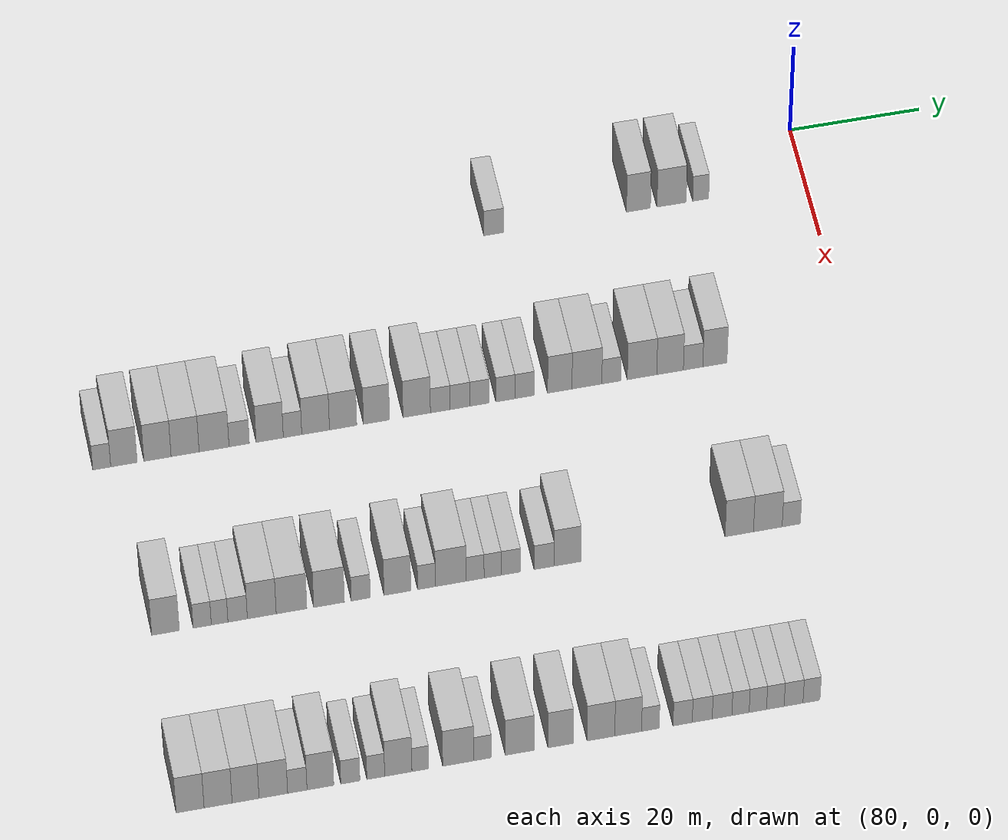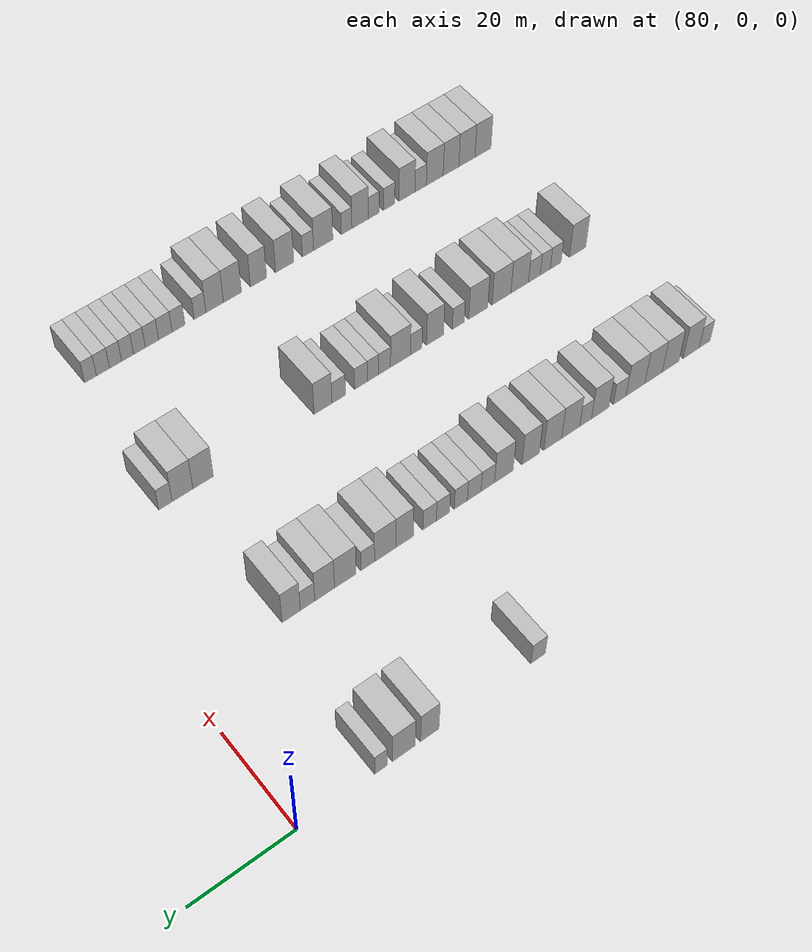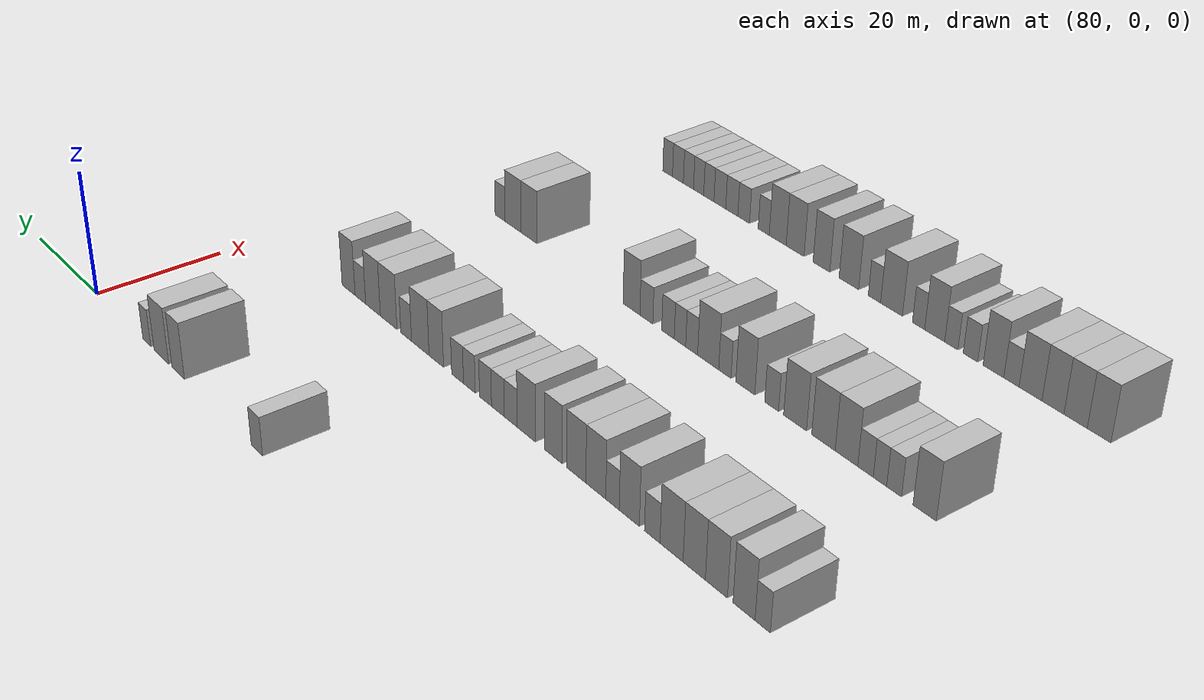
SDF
<sdf version="1.6">
 <world name="default">
  <model name="building_557">
   <static>1</static>
   <pose>85.0000 -47.4064 0 0.000000 0.000000 0.000000</pose>
   <link name="link">
    <pose>0 0 3.00 0 0 0</pose>
    <collision name="collision"><geometry><box><size>10.0000 2.9872 6.0000</size></box></geometry></collision>
    <visual name="visual">
     <cast_shadows>0</cast_shadows>
     <geometry><box><size>10.0000 2.9872 6.0000</size></box></geometry>
     <material>
      <script>
       <uri>model://HANNAS_wall/materials/scripts</uri>
       <uri>model://HANNAS_wall/materials/textures</uri>
       <name>vrc/HANNAS_wall</name>
      </script>
     </material>
    </visual>
   </link>
  </model>
  <model name="building_558">
   <static>1</static>
   <pose>85.0000 -25.4337 0 0.000000 0.000000 0.000000</pose>
   <link name="link">
    <pose>0 0 4.50 0 0 0</pose>
    <collision name="collision"><geometry><box><size>10.0000 3.6527 9.0000</size></box></geometry></collision>
    <visual name="visual">
     <cast_shadows>0</cast_shadows>
     <geometry><box><size>10.0000 3.6527 9.0000</size></box></geometry>
     <material>
      <script>
       <uri>model://HANNAS_wall/materials/scripts</uri>
       <uri>model://HANNAS_wall/materials/textures</uri>
       <name>vrc/HANNAS_wall</name>
      </script>
     </material>
    </visual>
   </link>
  </model>
  <model name="building_559">
   <static>1</static>
   <pose>85.0000 -20.3836 0 0.000000 0.000000 0.000000</pose>
   <link name="link">
    <pose>0 0 4.50 0 0 0</pose>
    <collision name="collision"><geometry><box><size>10.0000 4.4476 9.0000</size></box></geometry></collision>
    <visual name="visual">
     <cast_shadows>0</cast_shadows>
     <geometry><box><size>10.0000 4.4476 9.0000</size></box></geometry>
     <material>
      <script>
       <uri>model://HANNAS_wall/materials/scripts</uri>
       <uri>model://HANNAS_wall/materials/textures</uri>
       <name>vrc/HANNAS_wall</name>
      </script>
     </material>
    </visual>
   </link>
  </model>
  <model name="building_560">
   <static>1</static>
   <pose>85.0000 -15.9455 0 0.000000 0.000000 0.000000</pose>
   <link name="link">
    <pose>0 0 3.00 0 0 0</pose>
    <collision name="collision"><geometry><box><size>10.0000 2.4285 6.0000</size></box></geometry></collision>
    <visual name="visual">
     <cast_shadows>0</cast_shadows>
     <geometry><box><size>10.0000 2.4285 6.0000</size></box></geometry>
     <material>
      <script>
       <uri>model://HANNAS_wall/materials/scripts</uri>
       <uri>model://HANNAS_wall/materials/textures</uri>
       <name>vrc/HANNAS_wall</name>
      </script>
     </material>
    </visual>
   </link>
  </model>
  <model name="building_766">
   <static>1</static>
   <pose>115.0000 -111.4773 0 0.000000 0.000000 0.000000</pose>
   <link name="link">
    <pose>0 0 3.00 0 0 0</pose>
    <collision name="collision"><geometry><box><size>10.0000 2.6357 6.0000</size></box></geometry></collision>
    <visual name="visual">
     <cast_shadows>0</cast_shadows>
     <geometry><box><size>10.0000 2.6357 6.0000</size></box></geometry>
     <material>
      <script>
       <uri>model://HANNAS_wall/materials/scripts</uri>
       <uri>model://HANNAS_wall/materials/textures</uri>
       <name>vrc/HANNAS_wall</name>
      </script>
     </material>
    </visual>
   </link>
  </model>
  <model name="building_767">
   <static>1</static>
   <pose>115.0000 -108.2214 0 0.000000 0.000000 0.000000</pose>
   <link name="link">
    <pose>0 0 4.50 0 0 0</pose>
    <collision name="collision"><geometry><box><size>10.0000 3.8760 9.0000</size></box></geometry></collision>
    <visual name="visual">
     <cast_shadows>0</cast_shadows>
     <geometry><box><size>10.0000 3.8760 9.0000</size></box></geometry>
     <material>
      <script>
       <uri>model://HANNAS_wall/materials/scripts</uri>
       <uri>model://HANNAS_wall/materials/textures</uri>
       <name>vrc/HANNAS_wall</name>
      </script>
     </material>
    </visual>
   </link>
  </model>
  <model name="building_768">
   <static>1</static>
   <pose>115.0000 -103.2866 0 0.000000 0.000000 0.000000</pose>
   <link name="link">
    <pose>0 0 4.50 0 0 0</pose>
    <collision name="collision"><geometry><box><size>10.0000 3.9936 9.0000</size></box></geometry></collision>
    <visual name="visual">
     <cast_shadows>0</cast_shadows>
     <geometry><box><size>10.0000 3.9936 9.0000</size></box></geometry>
     <material>
      <script>
       <uri>model://HANNAS_wall/materials/scripts</uri>
       <uri>model://HANNAS_wall/materials/textures</uri>
       <name>vrc/HANNAS_wall</name>
      </script>
     </material>
    </visual>
   </link>
  </model>
  <model name="building_769">
   <static>1</static>
   <pose>115.0000 -99.2289 0 0.000000 0.000000 0.000000</pose>
   <link name="link">
    <pose>0 0 4.50 0 0 0</pose>
    <collision name="collision"><geometry><box><size>10.0000 4.1220 9.0000</size></box></geometry></collision>
    <visual name="visual">
     <cast_shadows>0</cast_shadows>
     <geometry><box><size>10.0000 4.1220 9.0000</size></box></geometry>
     <material>
      <script>
       <uri>model://HANNAS_wall/materials/scripts</uri>
       <uri>model://HANNAS_wall/materials/textures</uri>
       <name>vrc/HANNAS_wall</name>
      </script>
     </material>
    </visual>
   </link>
  </model>
  <model name="building_770">
   <static>1</static>
   <pose>115.0000 -94.9669 0 0.000000 0.000000 0.000000</pose>
   <link name="link">
    <pose>0 0 4.50 0 0 0</pose>
    <collision name="collision"><geometry><box><size>10.0000 4.4020 9.0000</size></box></geometry></collision>
    <visual name="visual">
     <cast_shadows>0</cast_shadows>
     <geometry><box><size>10.0000 4.4020 9.0000</size></box></geometry>
     <material>
      <script>
       <uri>model://HANNAS_wall/materials/scripts</uri>
       <uri>model://HANNAS_wall/materials/textures</uri>
       <name>vrc/HANNAS_wall</name>
      </script>
     </material>
    </visual>
   </link>
  </model>
  <model name="building_771">
   <static>1</static>
   <pose>115.0000 -91.2670 0 0.000000 0.000000 0.000000</pose>
   <link name="link">
    <pose>0 0 3.00 0 0 0</pose>
    <collision name="collision"><geometry><box><size>10.0000 2.9978 6.0000</size></box></geometry></collision>
    <visual name="visual">
     <cast_shadows>0</cast_shadows>
     <geometry><box><size>10.0000 2.9978 6.0000</size></box></geometry>
     <material>
      <script>
       <uri>model://HANNAS_wall/materials/scripts</uri>
       <uri>model://HANNAS_wall/materials/textures</uri>
       <name>vrc/HANNAS_wall</name>
      </script>
     </material>
    </visual>
   </link>
  </model>
  <model name="building_772">
   <static>1</static>
   <pose>115.0000 -86.7597 0 0.000000 0.000000 0.000000</pose>
   <link name="link">
    <pose>0 0 4.50 0 0 0</pose>
    <collision name="collision"><geometry><box><size>10.0000 4.0169 9.0000</size></box></geometry></collision>
    <visual name="visual">
     <cast_shadows>0</cast_shadows>
     <geometry><box><size>10.0000 4.0169 9.0000</size></box></geometry>
     <material>
      <script>
       <uri>model://HANNAS_wall/materials/scripts</uri>
       <uri>model://HANNAS_wall/materials/textures</uri>
       <name>vrc/HANNAS_wall</name>
      </script>
     </material>
    </visual>
   </link>
  </model>
  <model name="building_773">
   <static>1</static>
   <pose>115.0000 -83.3892 0 0.000000 0.000000 0.000000</pose>
   <link name="link">
    <pose>0 0 3.00 0 0 0</pose>
    <collision name="collision"><geometry><box><size>10.0000 2.7242 6.0000</size></box></geometry></collision>
    <visual name="visual">
     <cast_shadows>0</cast_shadows>
     <geometry><box><size>10.0000 2.7242 6.0000</size></box></geometry>
     <material>
      <script>
       <uri>model://HANNAS_wall/materials/scripts</uri>
       <uri>model://HANNAS_wall/materials/textures</uri>
       <name>vrc/HANNAS_wall</name>
      </script>
     </material>
    </visual>
   </link>
  </model>
  <model name="building_774">
   <static>1</static>
   <pose>115.0000 -79.9751 0 0.000000 0.000000 0.000000</pose>
   <link name="link">
    <pose>0 0 4.50 0 0 0</pose>
    <collision name="collision"><geometry><box><size>10.0000 4.1040 9.0000</size></box></geometry></collision>
    <visual name="visual">
     <cast_shadows>0</cast_shadows>
     <geometry><box><size>10.0000 4.1040 9.0000</size></box></geometry>
     <material>
      <script>
       <uri>model://HANNAS_wall/materials/scripts</uri>
       <uri>model://HANNAS_wall/materials/textures</uri>
       <name>vrc/HANNAS_wall</name>
      </script>
     </material>
    </visual>
   </link>
  </model>
  <model name="building_775">
   <static>1</static>
   <pose>115.0000 -75.9081 0 0.000000 0.000000 0.000000</pose>
   <link name="link">
    <pose>0 0 4.50 0 0 0</pose>
    <collision name="collision"><geometry><box><size>10.0000 4.0300 9.0000</size></box></geometry></collision>
    <visual name="visual">
     <cast_shadows>0</cast_shadows>
     <geometry><box><size>10.0000 4.0300 9.0000</size></box></geometry>
     <material>
      <script>
       <uri>model://HANNAS_wall/materials/scripts</uri>
       <uri>model://HANNAS_wall/materials/textures</uri>
       <name>vrc/HANNAS_wall</name>
      </script>
     </material>
    </visual>
   </link>
  </model>
  <model name="building_776">
   <static>1</static>
   <pose>115.0000 -70.9661 0 0.000000 0.000000 0.000000</pose>
   <link name="link">
    <pose>0 0 4.50 0 0 0</pose>
    <collision name="collision"><geometry><box><size>10.0000 3.8540 9.0000</size></box></geometry></collision>
    <visual name="visual">
     <cast_shadows>0</cast_shadows>
     <geometry><box><size>10.0000 3.8540 9.0000</size></box></geometry>
     <material>
      <script>
       <uri>model://HANNAS_wall/materials/scripts</uri>
       <uri>model://HANNAS_wall/materials/textures</uri>
       <name>vrc/HANNAS_wall</name>
      </script>
     </material>
    </visual>
   </link>
  </model>
  <model name="building_777">
   <static>1</static>
   <pose>115.0000 -65.0025 0 0.000000 0.000000 0.000000</pose>
   <link name="link">
    <pose>0 0 4.50 0 0 0</pose>
    <collision name="collision"><geometry><box><size>10.0000 4.0732 9.0000</size></box></geometry></collision>
    <visual name="visual">
     <cast_shadows>0</cast_shadows>
     <geometry><box><size>10.0000 4.0732 9.0000</size></box></geometry>
     <material>
      <script>
       <uri>model://HANNAS_wall/materials/scripts</uri>
       <uri>model://HANNAS_wall/materials/textures</uri>
       <name>vrc/HANNAS_wall</name>
      </script>
     </material>
    </visual>
   </link>
  </model>
  <model name="building_778">
   <static>1</static>
   <pose>115.0000 -61.4959 0 0.000000 0.000000 0.000000</pose>
   <link name="link">
    <pose>0 0 3.00 0 0 0</pose>
    <collision name="collision"><geometry><box><size>10.0000 2.9400 6.0000</size></box></geometry></collision>
    <visual name="visual">
     <cast_shadows>0</cast_shadows>
     <geometry><box><size>10.0000 2.9400 6.0000</size></box></geometry>
     <material>
      <script>
       <uri>model://HANNAS_wall/materials/scripts</uri>
       <uri>model://HANNAS_wall/materials/textures</uri>
       <name>vrc/HANNAS_wall</name>
      </script>
     </material>
    </visual>
   </link>
  </model>
  <model name="building_779">
   <static>1</static>
   <pose>115.0000 -58.5460 0 0.000000 0.000000 0.000000</pose>
   <link name="link">
    <pose>0 0 3.00 0 0 0</pose>
    <collision name="collision"><geometry><box><size>10.0000 2.9598 6.0000</size></box></geometry></collision>
    <visual name="visual">
     <cast_shadows>0</cast_shadows>
     <geometry><box><size>10.0000 2.9598 6.0000</size></box></geometry>
     <material>
      <script>
       <uri>model://HANNAS_wall/materials/scripts</uri>
       <uri>model://HANNAS_wall/materials/textures</uri>
       <name>vrc/HANNAS_wall</name>
      </script>
     </material>
    </visual>
   </link>
  </model>
  <model name="building_780">
   <static>1</static>
   <pose>115.0000 -55.6535 0 0.000000 0.000000 0.000000</pose>
   <link name="link">
    <pose>0 0 3.00 0 0 0</pose>
    <collision name="collision"><geometry><box><size>10.0000 2.8251 6.0000</size></box></geometry></collision>
    <visual name="visual">
     <cast_shadows>0</cast_shadows>
     <geometry><box><size>10.0000 2.8251 6.0000</size></box></geometry>
     <material>
      <script>
       <uri>model://HANNAS_wall/materials/scripts</uri>
       <uri>model://HANNAS_wall/materials/textures</uri>
       <name>vrc/HANNAS_wall</name>
      </script>
     </material>
    </visual>
   </link>
  </model>
  <model name="building_781">
   <static>1</static>
   <pose>115.0000 -51.8244 0 0.000000 0.000000 0.000000</pose>
   <link name="link">
    <pose>0 0 3.00 0 0 0</pose>
    <collision name="collision"><geometry><box><size>10.0000 2.8332 6.0000</size></box></geometry></collision>
    <visual name="visual">
     <cast_shadows>0</cast_shadows>
     <geometry><box><size>10.0000 2.8332 6.0000</size></box></geometry>
     <material>
      <script>
       <uri>model://HANNAS_wall/materials/scripts</uri>
       <uri>model://HANNAS_wall/materials/textures</uri>
       <name>vrc/HANNAS_wall</name>
      </script>
     </material>
    </visual>
   </link>
  </model>
  <model name="building_782">
   <static>1</static>
   <pose>115.0000 -48.9691 0 0.000000 0.000000 0.000000</pose>
   <link name="link">
    <pose>0 0 3.00 0 0 0</pose>
    <collision name="collision"><geometry><box><size>10.0000 2.8774 6.0000</size></box></geometry></collision>
    <visual name="visual">
     <cast_shadows>0</cast_shadows>
     <geometry><box><size>10.0000 2.8774 6.0000</size></box></geometry>
     <material>
      <script>
       <uri>model://HANNAS_wall/materials/scripts</uri>
       <uri>model://HANNAS_wall/materials/textures</uri>
       <name>vrc/HANNAS_wall</name>
      </script>
     </material>
    </visual>
   </link>
  </model>
  <model name="building_783">
   <static>1</static>
   <pose>115.0000 -43.7094 0 0.000000 0.000000 0.000000</pose>
   <link name="link">
    <pose>0 0 4.50 0 0 0</pose>
    <collision name="collision"><geometry><box><size>10.0000 3.6418 9.0000</size></box></geometry></collision>
    <visual name="visual">
     <cast_shadows>0</cast_shadows>
     <geometry><box><size>10.0000 3.6418 9.0000</size></box></geometry>
     <material>
      <script>
       <uri>model://HANNAS_wall/materials/scripts</uri>
       <uri>model://HANNAS_wall/materials/textures</uri>
       <name>vrc/HANNAS_wall</name>
      </script>
     </material>
    </visual>
   </link>
  </model>
  <model name="building_784">
   <static>1</static>
   <pose>115.0000 -39.6632 0 0.000000 0.000000 0.000000</pose>
   <link name="link">
    <pose>0 0 4.50 0 0 0</pose>
    <collision name="collision"><geometry><box><size>10.0000 4.4506 9.0000</size></box></geometry></collision>
    <visual name="visual">
     <cast_shadows>0</cast_shadows>
     <geometry><box><size>10.0000 4.4506 9.0000</size></box></geometry>
     <material>
      <script>
       <uri>model://HANNAS_wall/materials/scripts</uri>
       <uri>model://HANNAS_wall/materials/textures</uri>
       <name>vrc/HANNAS_wall</name>
      </script>
     </material>
    </visual>
   </link>
  </model>
  <model name="building_785">
   <static>1</static>
   <pose>115.0000 -36.0374 0 0.000000 0.000000 0.000000</pose>
   <link name="link">
    <pose>0 0 3.00 0 0 0</pose>
    <collision name="collision"><geometry><box><size>10.0000 2.8010 6.0000</size></box></geometry></collision>
    <visual name="visual">
     <cast_shadows>0</cast_shadows>
     <geometry><box><size>10.0000 2.8010 6.0000</size></box></geometry>
     <material>
      <script>
       <uri>model://HANNAS_wall/materials/scripts</uri>
       <uri>model://HANNAS_wall/materials/textures</uri>
       <name>vrc/HANNAS_wall</name>
      </script>
     </material>
    </visual>
   </link>
  </model>
  <model name="building_786">
   <static>1</static>
   <pose>115.0000 -31.4346 0 0.000000 0.000000 0.000000</pose>
   <link name="link">
    <pose>0 0 4.50 0 0 0</pose>
    <collision name="collision"><geometry><box><size>10.0000 4.4046 9.0000</size></box></geometry></collision>
    <visual name="visual">
     <cast_shadows>0</cast_shadows>
     <geometry><box><size>10.0000 4.4046 9.0000</size></box></geometry>
     <material>
      <script>
       <uri>model://HANNAS_wall/materials/scripts</uri>
       <uri>model://HANNAS_wall/materials/textures</uri>
       <name>vrc/HANNAS_wall</name>
      </script>
     </material>
    </visual>
   </link>
  </model>
  <model name="building_787">
   <static>1</static>
   <pose>115.0000 -27.2376 0 0.000000 0.000000 0.000000</pose>
   <link name="link">
    <pose>0 0 4.50 0 0 0</pose>
    <collision name="collision"><geometry><box><size>10.0000 3.9894 9.0000</size></box></geometry></collision>
    <visual name="visual">
     <cast_shadows>0</cast_shadows>
     <geometry><box><size>10.0000 3.9894 9.0000</size></box></geometry>
     <material>
      <script>
       <uri>model://HANNAS_wall/materials/scripts</uri>
       <uri>model://HANNAS_wall/materials/textures</uri>
       <name>vrc/HANNAS_wall</name>
      </script>
     </material>
    </visual>
   </link>
  </model>
  <model name="building_788">
   <static>1</static>
   <pose>115.0000 -23.7920 0 0.000000 0.000000 0.000000</pose>
   <link name="link">
    <pose>0 0 3.00 0 0 0</pose>
    <collision name="collision"><geometry><box><size>10.0000 2.9019 6.0000</size></box></geometry></collision>
    <visual name="visual">
     <cast_shadows>0</cast_shadows>
     <geometry><box><size>10.0000 2.9019 6.0000</size></box></geometry>
     <material>
      <script>
       <uri>model://HANNAS_wall/materials/scripts</uri>
       <uri>model://HANNAS_wall/materials/textures</uri>
       <name>vrc/HANNAS_wall</name>
      </script>
     </material>
    </visual>
   </link>
  </model>
  <model name="building_789">
   <static>1</static>
   <pose>115.0000 -20.5292 0 0.000000 0.000000 0.000000</pose>
   <link name="link">
    <pose>0 0 4.50 0 0 0</pose>
    <collision name="collision"><geometry><box><size>10.0000 3.6236 9.0000</size></box></geometry></collision>
    <visual name="visual">
     <cast_shadows>0</cast_shadows>
     <geometry><box><size>10.0000 3.6236 9.0000</size></box></geometry>
     <material>
      <script>
       <uri>model://HANNAS_wall/materials/scripts</uri>
       <uri>model://HANNAS_wall/materials/textures</uri>
       <name>vrc/HANNAS_wall</name>
      </script>
     </material>
    </visual>
   </link>
  </model>
  <model name="building_997">
   <static>1</static>
   <pose>145.0000 -107.3881 0 0.000000 0.000000 0.000000</pose>
   <link name="link">
    <pose>0 0 4.50 0 0 0</pose>
    <collision name="collision"><geometry><box><size>10.0000 3.9894 9.0000</size></box></geometry></collision>
    <visual name="visual">
     <cast_shadows>0</cast_shadows>
     <geometry><box><size>10.0000 3.9894 9.0000</size></box></geometry>
     <material>
      <script>
       <uri>model://HANNAS_wall/materials/scripts</uri>
       <uri>model://HANNAS_wall/materials/textures</uri>
       <name>vrc/HANNAS_wall</name>
      </script>
     </material>
    </visual>
   </link>
  </model>
  <model name="building_998">
   <static>1</static>
   <pose>145.0000 -102.0772 0 0.000000 0.000000 0.000000</pose>
   <link name="link">
    <pose>0 0 3.00 0 0 0</pose>
    <collision name="collision"><geometry><box><size>10.0000 2.6323 6.0000</size></box></geometry></collision>
    <visual name="visual">
     <cast_shadows>0</cast_shadows>
     <geometry><box><size>10.0000 2.6323 6.0000</size></box></geometry>
     <material>
      <script>
       <uri>model://HANNAS_wall/materials/scripts</uri>
       <uri>model://HANNAS_wall/materials/textures</uri>
       <name>vrc/HANNAS_wall</name>
      </script>
     </material>
    </visual>
   </link>
  </model>
  <model name="building_999">
   <static>1</static>
   <pose>145.0000 -99.5596 0 0.000000 0.000000 0.000000</pose>
   <link name="link">
    <pose>0 0 3.00 0 0 0</pose>
    <collision name="collision"><geometry><box><size>10.0000 2.4031 6.0000</size></box></geometry></collision>
    <visual name="visual">
     <cast_shadows>0</cast_shadows>
     <geometry><box><size>10.0000 2.4031 6.0000</size></box></geometry>
     <material>
      <script>
       <uri>model://HANNAS_wall/materials/scripts</uri>
       <uri>model://HANNAS_wall/materials/textures</uri>
       <name>vrc/HANNAS_wall</name>
      </script>
     </material>
    </visual>
   </link>
  </model>
  <model name="building_1000">
   <static>1</static>
   <pose>145.0000 -96.9518 0 0.000000 0.000000 0.000000</pose>
   <link name="link">
    <pose>0 0 3.00 0 0 0</pose>
    <collision name="collision"><geometry><box><size>10.0000 2.8125 6.0000</size></box></geometry></collision>
    <visual name="visual">
     <cast_shadows>0</cast_shadows>
     <geometry><box><size>10.0000 2.8125 6.0000</size></box></geometry>
     <material>
      <script>
       <uri>model://HANNAS_wall/materials/scripts</uri>
       <uri>model://HANNAS_wall/materials/textures</uri>
       <name>vrc/HANNAS_wall</name>
      </script>
     </material>
    </visual>
   </link>
  </model>
  <model name="building_1001">
   <static>1</static>
   <pose>145.0000 -93.4558 0 0.000000 0.000000 0.000000</pose>
   <link name="link">
    <pose>0 0 4.50 0 0 0</pose>
    <collision name="collision"><geometry><box><size>10.0000 4.1795 9.0000</size></box></geometry></collision>
    <visual name="visual">
     <cast_shadows>0</cast_shadows>
     <geometry><box><size>10.0000 4.1795 9.0000</size></box></geometry>
     <material>
      <script>
       <uri>model://HANNAS_wall/materials/scripts</uri>
       <uri>model://HANNAS_wall/materials/textures</uri>
       <name>vrc/HANNAS_wall</name>
      </script>
     </material>
    </visual>
   </link>
  </model>
  <model name="building_1002">
   <static>1</static>
   <pose>145.0000 -89.1459 0 0.000000 0.000000 0.000000</pose>
   <link name="link">
    <pose>0 0 4.50 0 0 0</pose>
    <collision name="collision"><geometry><box><size>10.0000 4.4404 9.0000</size></box></geometry></collision>
    <visual name="visual">
     <cast_shadows>0</cast_shadows>
     <geometry><box><size>10.0000 4.4404 9.0000</size></box></geometry>
     <material>
      <script>
       <uri>model://HANNAS_wall/materials/scripts</uri>
       <uri>model://HANNAS_wall/materials/textures</uri>
       <name>vrc/HANNAS_wall</name>
      </script>
     </material>
    </visual>
   </link>
  </model>
  <model name="building_1003">
   <static>1</static>
   <pose>145.0000 -83.6964 0 0.000000 0.000000 0.000000</pose>
   <link name="link">
    <pose>0 0 4.50 0 0 0</pose>
    <collision name="collision"><geometry><box><size>10.0000 4.4586 9.0000</size></box></geometry></collision>
    <visual name="visual">
     <cast_shadows>0</cast_shadows>
     <geometry><box><size>10.0000 4.4586 9.0000</size></box></geometry>
     <material>
      <script>
       <uri>model://HANNAS_wall/materials/scripts</uri>
       <uri>model://HANNAS_wall/materials/textures</uri>
       <name>vrc/HANNAS_wall</name>
      </script>
     </material>
    </visual>
   </link>
  </model>
  <model name="building_1004">
   <static>1</static>
   <pose>145.0000 -79.0856 0 0.000000 0.000000 0.000000</pose>
   <link name="link">
    <pose>0 0 3.00 0 0 0</pose>
    <collision name="collision"><geometry><box><size>10.0000 2.7630 6.0000</size></box></geometry></collision>
    <visual name="visual">
     <cast_shadows>0</cast_shadows>
     <geometry><box><size>10.0000 2.7630 6.0000</size></box></geometry>
     <material>
      <script>
       <uri>model://HANNAS_wall/materials/scripts</uri>
       <uri>model://HANNAS_wall/materials/textures</uri>
       <name>vrc/HANNAS_wall</name>
      </script>
     </material>
    </visual>
   </link>
  </model>
  <model name="building_1005">
   <static>1</static>
   <pose>145.0000 -73.7544 0 0.000000 0.000000 0.000000</pose>
   <link name="link">
    <pose>0 0 4.50 0 0 0</pose>
    <collision name="collision"><geometry><box><size>10.0000 3.8992 9.0000</size></box></geometry></collision>
    <visual name="visual">
     <cast_shadows>0</cast_shadows>
     <geometry><box><size>10.0000 3.8992 9.0000</size></box></geometry>
     <material>
      <script>
       <uri>model://HANNAS_wall/materials/scripts</uri>
       <uri>model://HANNAS_wall/materials/textures</uri>
       <name>vrc/HANNAS_wall</name>
      </script>
     </material>
    </visual>
   </link>
  </model>
  <model name="building_1006">
   <static>1</static>
   <pose>145.0000 -69.5105 0 0.000000 0.000000 0.000000</pose>
   <link name="link">
    <pose>0 0 3.00 0 0 0</pose>
    <collision name="collision"><geometry><box><size>10.0000 2.5888 6.0000</size></box></geometry></collision>
    <visual name="visual">
     <cast_shadows>0</cast_shadows>
     <geometry><box><size>10.0000 2.5888 6.0000</size></box></geometry>
     <material>
      <script>
       <uri>model://HANNAS_wall/materials/scripts</uri>
       <uri>model://HANNAS_wall/materials/textures</uri>
       <name>vrc/HANNAS_wall</name>
      </script>
     </material>
    </visual>
   </link>
  </model>
  <model name="building_1007">
   <static>1</static>
   <pose>145.0000 -65.9717 0 0.000000 0.000000 0.000000</pose>
   <link name="link">
    <pose>0 0 4.50 0 0 0</pose>
    <collision name="collision"><geometry><box><size>10.0000 4.4888 9.0000</size></box></geometry></collision>
    <visual name="visual">
     <cast_shadows>0</cast_shadows>
     <geometry><box><size>10.0000 4.4888 9.0000</size></box></geometry>
     <material>
      <script>
       <uri>model://HANNAS_wall/materials/scripts</uri>
       <uri>model://HANNAS_wall/materials/textures</uri>
       <name>vrc/HANNAS_wall</name>
      </script>
     </material>
    </visual>
   </link>
  </model>
  <model name="building_1008">
   <static>1</static>
   <pose>145.0000 -62.4215 0 0.000000 0.000000 0.000000</pose>
   <link name="link">
    <pose>0 0 3.00 0 0 0</pose>
    <collision name="collision"><geometry><box><size>10.0000 2.6116 6.0000</size></box></geometry></collision>
    <visual name="visual">
     <cast_shadows>0</cast_shadows>
     <geometry><box><size>10.0000 2.6116 6.0000</size></box></geometry>
     <material>
      <script>
       <uri>model://HANNAS_wall/materials/scripts</uri>
       <uri>model://HANNAS_wall/materials/textures</uri>
       <name>vrc/HANNAS_wall</name>
      </script>
     </material>
    </visual>
   </link>
  </model>
  <model name="building_1009">
   <static>1</static>
   <pose>145.0000 -59.8563 0 0.000000 0.000000 0.000000</pose>
   <link name="link">
    <pose>0 0 3.00 0 0 0</pose>
    <collision name="collision"><geometry><box><size>10.0000 2.5187 6.0000</size></box></geometry></collision>
    <visual name="visual">
     <cast_shadows>0</cast_shadows>
     <geometry><box><size>10.0000 2.5187 6.0000</size></box></geometry>
     <material>
      <script>
       <uri>model://HANNAS_wall/materials/scripts</uri>
       <uri>model://HANNAS_wall/materials/textures</uri>
       <name>vrc/HANNAS_wall</name>
      </script>
     </material>
    </visual>
   </link>
  </model>
  <model name="building_1010">
   <static>1</static>
   <pose>145.0000 -57.2023 0 0.000000 0.000000 0.000000</pose>
   <link name="link">
    <pose>0 0 3.00 0 0 0</pose>
    <collision name="collision"><geometry><box><size>10.0000 2.7893 6.0000</size></box></geometry></collision>
    <visual name="visual">
     <cast_shadows>0</cast_shadows>
     <geometry><box><size>10.0000 2.7893 6.0000</size></box></geometry>
     <material>
      <script>
       <uri>model://HANNAS_wall/materials/scripts</uri>
       <uri>model://HANNAS_wall/materials/textures</uri>
       <name>vrc/HANNAS_wall</name>
      </script>
     </material>
    </visual>
   </link>
  </model>
  <model name="building_1011">
   <static>1</static>
   <pose>145.0000 -52.3284 0 0.000000 0.000000 0.000000</pose>
   <link name="link">
    <pose>0 0 3.00 0 0 0</pose>
    <collision name="collision"><geometry><box><size>10.0000 2.9586 6.0000</size></box></geometry></collision>
    <visual name="visual">
     <cast_shadows>0</cast_shadows>
     <geometry><box><size>10.0000 2.9586 6.0000</size></box></geometry>
     <material>
      <script>
       <uri>model://HANNAS_wall/materials/scripts</uri>
       <uri>model://HANNAS_wall/materials/textures</uri>
       <name>vrc/HANNAS_wall</name>
      </script>
     </material>
    </visual>
   </link>
  </model>
  <model name="building_1012">
   <static>1</static>
   <pose>145.0000 -48.9022 0 0.000000 0.000000 0.000000</pose>
   <link name="link">
    <pose>0 0 4.50 0 0 0</pose>
    <collision name="collision"><geometry><box><size>10.0000 3.8937 9.0000</size></box></geometry></collision>
    <visual name="visual">
     <cast_shadows>0</cast_shadows>
     <geometry><box><size>10.0000 3.8937 9.0000</size></box></geometry>
     <material>
      <script>
       <uri>model://HANNAS_wall/materials/scripts</uri>
       <uri>model://HANNAS_wall/materials/textures</uri>
       <name>vrc/HANNAS_wall</name>
      </script>
     </material>
    </visual>
   </link>
  </model>
  <model name="building_1013">
   <static>1</static>
   <pose>145.0000 -23.6770 0 0.000000 0.000000 0.000000</pose>
   <link name="link">
    <pose>0 0 4.50 0 0 0</pose>
    <collision name="collision"><geometry><box><size>10.0000 4.1856 9.0000</size></box></geometry></collision>
    <visual name="visual">
     <cast_shadows>0</cast_shadows>
     <geometry><box><size>10.0000 4.1856 9.0000</size></box></geometry>
     <material>
      <script>
       <uri>model://HANNAS_wall/materials/scripts</uri>
       <uri>model://HANNAS_wall/materials/textures</uri>
       <name>vrc/HANNAS_wall</name>
      </script>
     </material>
    </visual>
   </link>
  </model>
  <model name="building_1014">
   <static>1</static>
   <pose>145.0000 -19.4687 0 0.000000 0.000000 0.000000</pose>
   <link name="link">
    <pose>0 0 4.50 0 0 0</pose>
    <collision name="collision"><geometry><box><size>10.0000 4.2312 9.0000</size></box></geometry></collision>
    <visual name="visual">
     <cast_shadows>0</cast_shadows>
     <geometry><box><size>10.0000 4.2312 9.0000</size></box></geometry>
     <material>
      <script>
       <uri>model://HANNAS_wall/materials/scripts</uri>
       <uri>model://HANNAS_wall/materials/textures</uri>
       <name>vrc/HANNAS_wall</name>
      </script>
     </material>
    </visual>
   </link>
  </model>
  <model name="building_1015">
   <static>1</static>
   <pose>145.0000 -16.0120 0 0.000000 0.000000 0.000000</pose>
   <link name="link">
    <pose>0 0 3.00 0 0 0</pose>
    <collision name="collision"><geometry><box><size>10.0000 2.6821 6.0000</size></box></geometry></collision>
    <visual name="visual">
     <cast_shadows>0</cast_shadows>
     <geometry><box><size>10.0000 2.6821 6.0000</size></box></geometry>
     <material>
      <script>
       <uri>model://HANNAS_wall/materials/scripts</uri>
       <uri>model://HANNAS_wall/materials/textures</uri>
       <name>vrc/HANNAS_wall</name>
      </script>
     </material>
    </visual>
   </link>
  </model>
  <model name="building_1217">
   <static>1</static>
   <pose>175.0000 -109.1653 0 0.000000 0.000000 0.000000</pose>
   <link name="link">
    <pose>0 0 4.50 0 0 0</pose>
    <collision name="collision"><geometry><box><size>10.0000 3.9616 9.0000</size></box></geometry></collision>
    <visual name="visual">
     <cast_shadows>0</cast_shadows>
     <geometry><box><size>10.0000 3.9616 9.0000</size></box></geometry>
     <material>
      <script>
       <uri>model://HANNAS_wall/materials/scripts</uri>
       <uri>model://HANNAS_wall/materials/textures</uri>
       <name>vrc/HANNAS_wall</name>
      </script>
     </material>
    </visual>
   </link>
  </model>
  <model name="building_1218">
   <static>1</static>
   <pose>175.0000 -105.1929 0 0.000000 0.000000 0.000000</pose>
   <link name="link">
    <pose>0 0 4.50 0 0 0</pose>
    <collision name="collision"><geometry><box><size>10.0000 3.9832 9.0000</size></box></geometry></collision>
    <visual name="visual">
     <cast_shadows>0</cast_shadows>
     <geometry><box><size>10.0000 3.9832 9.0000</size></box></geometry>
     <material>
      <script>
       <uri>model://HANNAS_wall/materials/scripts</uri>
       <uri>model://HANNAS_wall/materials/textures</uri>
       <name>vrc/HANNAS_wall</name>
      </script>
     </material>
    </visual>
   </link>
  </model>
  <model name="building_1219">
   <static>1</static>
   <pose>175.0000 -101.2886 0 0.000000 0.000000 0.000000</pose>
   <link name="link">
    <pose>0 0 4.50 0 0 0</pose>
    <collision name="collision"><geometry><box><size>10.0000 3.8255 9.0000</size></box></geometry></collision>
    <visual name="visual">
     <cast_shadows>0</cast_shadows>
     <geometry><box><size>10.0000 3.8255 9.0000</size></box></geometry>
     <material>
      <script>
       <uri>model://HANNAS_wall/materials/scripts</uri>
       <uri>model://HANNAS_wall/materials/textures</uri>
       <name>vrc/HANNAS_wall</name>
      </script>
     </material>
    </visual>
   </link>
  </model>
  <model name="building_1220">
   <static>1</static>
   <pose>175.0000 -97.3392 0 0.000000 0.000000 0.000000</pose>
   <link name="link">
    <pose>0 0 4.50 0 0 0</pose>
    <collision name="collision"><geometry><box><size>10.0000 4.0732 9.0000</size></box></geometry></collision>
    <visual name="visual">
     <cast_shadows>0</cast_shadows>
     <geometry><box><size>10.0000 4.0732 9.0000</size></box></geometry>
     <material>
      <script>
       <uri>model://HANNAS_wall/materials/scripts</uri>
       <uri>model://HANNAS_wall/materials/textures</uri>
       <name>vrc/HANNAS_wall</name>
      </script>
     </material>
    </visual>
   </link>
  </model>
  <model name="building_1221">
   <static>1</static>
   <pose>175.0000 -93.9229 0 0.000000 0.000000 0.000000</pose>
   <link name="link">
    <pose>0 0 3.00 0 0 0</pose>
    <collision name="collision"><geometry><box><size>10.0000 2.7595 6.0000</size></box></geometry></collision>
    <visual name="visual">
     <cast_shadows>0</cast_shadows>
     <geometry><box><size>10.0000 2.7595 6.0000</size></box></geometry>
     <material>
      <script>
       <uri>model://HANNAS_wall/materials/scripts</uri>
       <uri>model://HANNAS_wall/materials/textures</uri>
       <name>vrc/HANNAS_wall</name>
      </script>
     </material>
    </visual>
   </link>
  </model>
  <model name="building_1222">
   <static>1</static>
   <pose>175.0000 -90.6374 0 0.000000 0.000000 0.000000</pose>
   <link name="link">
    <pose>0 0 4.50 0 0 0</pose>
    <collision name="collision"><geometry><box><size>10.0000 3.8115 9.0000</size></box></geometry></collision>
    <visual name="visual">
     <cast_shadows>0</cast_shadows>
     <geometry><box><size>10.0000 3.8115 9.0000</size></box></geometry>
     <material>
      <script>
       <uri>model://HANNAS_wall/materials/scripts</uri>
       <uri>model://HANNAS_wall/materials/textures</uri>
       <name>vrc/HANNAS_wall</name>
      </script>
     </material>
    </visual>
   </link>
  </model>
  <model name="building_1223">
   <static>1</static>
   <pose>175.0000 -86.3687 0 0.000000 0.000000 0.000000</pose>
   <link name="link">
    <pose>0 0 3.00 0 0 0</pose>
    <collision name="collision"><geometry><box><size>10.0000 2.7258 6.0000</size></box></geometry></collision>
    <visual name="visual">
     <cast_shadows>0</cast_shadows>
     <geometry><box><size>10.0000 2.7258 6.0000</size></box></geometry>
     <material>
      <script>
       <uri>model://HANNAS_wall/materials/scripts</uri>
       <uri>model://HANNAS_wall/materials/textures</uri>
       <name>vrc/HANNAS_wall</name>
      </script>
     </material>
    </visual>
   </link>
  </model>
  <model name="building_1224">
   <static>1</static>
   <pose>175.0000 -82.7362 0 0.000000 0.000000 0.000000</pose>
   <link name="link">
    <pose>0 0 3.00 0 0 0</pose>
    <collision name="collision"><geometry><box><size>10.0000 2.5392 6.0000</size></box></geometry></collision>
    <visual name="visual">
     <cast_shadows>0</cast_shadows>
     <geometry><box><size>10.0000 2.5392 6.0000</size></box></geometry>
     <material>
      <script>
       <uri>model://HANNAS_wall/materials/scripts</uri>
       <uri>model://HANNAS_wall/materials/textures</uri>
       <name>vrc/HANNAS_wall</name>
      </script>
     </material>
    </visual>
   </link>
  </model>
  <model name="building_1225">
   <static>1</static>
   <pose>175.0000 -79.5181 0 0.000000 0.000000 0.000000</pose>
   <link name="link">
    <pose>0 0 4.50 0 0 0</pose>
    <collision name="collision"><geometry><box><size>10.0000 3.8970 9.0000</size></box></geometry></collision>
    <visual name="visual">
     <cast_shadows>0</cast_shadows>
     <geometry><box><size>10.0000 3.8970 9.0000</size></box></geometry>
     <material>
      <script>
       <uri>model://HANNAS_wall/materials/scripts</uri>
       <uri>model://HANNAS_wall/materials/textures</uri>
       <name>vrc/HANNAS_wall</name>
      </script>
     </material>
    </visual>
   </link>
  </model>
  <model name="building_1226">
   <static>1</static>
   <pose>175.0000 -76.3668 0 0.000000 0.000000 0.000000</pose>
   <link name="link">
    <pose>0 0 3.00 0 0 0</pose>
    <collision name="collision"><geometry><box><size>10.0000 2.4055 6.0000</size></box></geometry></collision>
    <visual name="visual">
     <cast_shadows>0</cast_shadows>
     <geometry><box><size>10.0000 2.4055 6.0000</size></box></geometry>
     <material>
      <script>
       <uri>model://HANNAS_wall/materials/scripts</uri>
       <uri>model://HANNAS_wall/materials/textures</uri>
       <name>vrc/HANNAS_wall</name>
      </script>
     </material>
    </visual>
   </link>
  </model>
  <model name="building_1227">
   <static>1</static>
   <pose>175.0000 -70.9505 0 0.000000 0.000000 0.000000</pose>
   <link name="link">
    <pose>0 0 4.50 0 0 0</pose>
    <collision name="collision"><geometry><box><size>10.0000 4.4271 9.0000</size></box></geometry></collision>
    <visual name="visual">
     <cast_shadows>0</cast_shadows>
     <geometry><box><size>10.0000 4.4271 9.0000</size></box></geometry>
     <material>
      <script>
       <uri>model://HANNAS_wall/materials/scripts</uri>
       <uri>model://HANNAS_wall/materials/textures</uri>
       <name>vrc/HANNAS_wall</name>
      </script>
     </material>
    </visual>
   </link>
  </model>
  <model name="building_1228">
   <static>1</static>
   <pose>175.0000 -67.4682 0 0.000000 0.000000 0.000000</pose>
   <link name="link">
    <pose>0 0 3.00 0 0 0</pose>
    <collision name="collision"><geometry><box><size>10.0000 2.5374 6.0000</size></box></geometry></collision>
    <visual name="visual">
     <cast_shadows>0</cast_shadows>
     <geometry><box><size>10.0000 2.5374 6.0000</size></box></geometry>
     <material>
      <script>
       <uri>model://HANNAS_wall/materials/scripts</uri>
       <uri>model://HANNAS_wall/materials/textures</uri>
       <name>vrc/HANNAS_wall</name>
      </script>
     </material>
    </visual>
   </link>
  </model>
  <model name="building_1229">
   <static>1</static>
   <pose>175.0000 -62.1346 0 0.000000 0.000000 0.000000</pose>
   <link name="link">
    <pose>0 0 4.50 0 0 0</pose>
    <collision name="collision"><geometry><box><size>10.0000 4.1298 9.0000</size></box></geometry></collision>
    <visual name="visual">
     <cast_shadows>0</cast_shadows>
     <geometry><box><size>10.0000 4.1298 9.0000</size></box></geometry>
     <material>
      <script>
       <uri>model://HANNAS_wall/materials/scripts</uri>
       <uri>model://HANNAS_wall/materials/textures</uri>
       <name>vrc/HANNAS_wall</name>
      </script>
     </material>
    </visual>
   </link>
  </model>
  <model name="building_1230">
   <static>1</static>
   <pose>175.0000 -56.2595 0 0.000000 0.000000 0.000000</pose>
   <link name="link">
    <pose>0 0 4.50 0 0 0</pose>
    <collision name="collision"><geometry><box><size>10.0000 3.6204 9.0000</size></box></geometry></collision>
    <visual name="visual">
     <cast_shadows>0</cast_shadows>
     <geometry><box><size>10.0000 3.6204 9.0000</size></box></geometry>
     <material>
      <script>
       <uri>model://HANNAS_wall/materials/scripts</uri>
       <uri>model://HANNAS_wall/materials/textures</uri>
       <name>vrc/HANNAS_wall</name>
      </script>
     </material>
    </visual>
   </link>
  </model>
  <model name="building_1231">
   <static>1</static>
   <pose>175.0000 -50.4558 0 0.000000 0.000000 0.000000</pose>
   <link name="link">
    <pose>0 0 4.50 0 0 0</pose>
    <collision name="collision"><geometry><box><size>10.0000 3.9870 9.0000</size></box></geometry></collision>
    <visual name="visual">
     <cast_shadows>0</cast_shadows>
     <geometry><box><size>10.0000 3.9870 9.0000</size></box></geometry>
     <material>
      <script>
       <uri>model://HANNAS_wall/materials/scripts</uri>
       <uri>model://HANNAS_wall/materials/textures</uri>
       <name>vrc/HANNAS_wall</name>
      </script>
     </material>
    </visual>
   </link>
  </model>
  <model name="building_1232">
   <static>1</static>
   <pose>175.0000 -46.5334 0 0.000000 0.000000 0.000000</pose>
   <link name="link">
    <pose>0 0 4.50 0 0 0</pose>
    <collision name="collision"><geometry><box><size>10.0000 3.8579 9.0000</size></box></geometry></collision>
    <visual name="visual">
     <cast_shadows>0</cast_shadows>
     <geometry><box><size>10.0000 3.8579 9.0000</size></box></geometry>
     <material>
      <script>
       <uri>model://HANNAS_wall/materials/scripts</uri>
       <uri>model://HANNAS_wall/materials/textures</uri>
       <name>vrc/HANNAS_wall</name>
      </script>
     </material>
    </visual>
   </link>
  </model>
  <model name="building_1233">
   <static>1</static>
   <pose>175.0000 -43.3328 0 0.000000 0.000000 0.000000</pose>
   <link name="link">
    <pose>0 0 3.00 0 0 0</pose>
    <collision name="collision"><geometry><box><size>10.0000 2.5433 6.0000</size></box></geometry></collision>
    <visual name="visual">
     <cast_shadows>0</cast_shadows>
     <geometry><box><size>10.0000 2.5433 6.0000</size></box></geometry>
     <material>
      <script>
       <uri>model://HANNAS_wall/materials/scripts</uri>
       <uri>model://HANNAS_wall/materials/textures</uri>
       <name>vrc/HANNAS_wall</name>
      </script>
     </material>
    </visual>
   </link>
  </model>
  <model name="building_1234">
   <static>1</static>
   <pose>175.0000 -38.6756 0 0.000000 0.000000 0.000000</pose>
   <link name="link">
    <pose>0 0 3.00 0 0 0</pose>
    <collision name="collision"><geometry><box><size>10.0000 2.7710 6.0000</size></box></geometry></collision>
    <visual name="visual">
     <cast_shadows>0</cast_shadows>
     <geometry><box><size>10.0000 2.7710 6.0000</size></box></geometry>
     <material>
      <script>
       <uri>model://HANNAS_wall/materials/scripts</uri>
       <uri>model://HANNAS_wall/materials/textures</uri>
       <name>vrc/HANNAS_wall</name>
      </script>
     </material>
    </visual>
   </link>
  </model>
  <model name="building_1235">
   <static>1</static>
   <pose>175.0000 -35.8465 0 0.000000 0.000000 0.000000</pose>
   <link name="link">
    <pose>0 0 3.00 0 0 0</pose>
    <collision name="collision"><geometry><box><size>10.0000 2.8871 6.0000</size></box></geometry></collision>
    <visual name="visual">
     <cast_shadows>0</cast_shadows>
     <geometry><box><size>10.0000 2.8871 6.0000</size></box></geometry>
     <material>
      <script>
       <uri>model://HANNAS_wall/materials/scripts</uri>
       <uri>model://HANNAS_wall/materials/textures</uri>
       <name>vrc/HANNAS_wall</name>
      </script>
     </material>
    </visual>
   </link>
  </model>
  <model name="building_1236">
   <static>1</static>
   <pose>175.0000 -32.9839 0 0.000000 0.000000 0.000000</pose>
   <link name="link">
    <pose>0 0 3.00 0 0 0</pose>
    <collision name="collision"><geometry><box><size>10.0000 2.8383 6.0000</size></box></geometry></collision>
    <visual name="visual">
     <cast_shadows>0</cast_shadows>
     <geometry><box><size>10.0000 2.8383 6.0000</size></box></geometry>
     <material>
      <script>
       <uri>model://HANNAS_wall/materials/scripts</uri>
       <uri>model://HANNAS_wall/materials/textures</uri>
       <name>vrc/HANNAS_wall</name>
      </script>
     </material>
    </visual>
   </link>
  </model>
  <model name="building_1237">
   <static>1</static>
   <pose>175.0000 -30.3134 0 0.000000 0.000000 0.000000</pose>
   <link name="link">
    <pose>0 0 3.00 0 0 0</pose>
    <collision name="collision"><geometry><box><size>10.0000 2.5027 6.0000</size></box></geometry></collision>
    <visual name="visual">
     <cast_shadows>0</cast_shadows>
     <geometry><box><size>10.0000 2.5027 6.0000</size></box></geometry>
     <material>
      <script>
       <uri>model://HANNAS_wall/materials/scripts</uri>
       <uri>model://HANNAS_wall/materials/textures</uri>
       <name>vrc/HANNAS_wall</name>
      </script>
     </material>
    </visual>
   </link>
  </model>
  <model name="building_1238">
   <static>1</static>
   <pose>175.0000 -27.8047 0 0.000000 0.000000 0.000000</pose>
   <link name="link">
    <pose>0 0 3.00 0 0 0</pose>
    <collision name="collision"><geometry><box><size>10.0000 2.5146 6.0000</size></box></geometry></collision>
    <visual name="visual">
     <cast_shadows>0</cast_shadows>
     <geometry><box><size>10.0000 2.5146 6.0000</size></box></geometry>
     <material>
      <script>
       <uri>model://HANNAS_wall/materials/scripts</uri>
       <uri>model://HANNAS_wall/materials/textures</uri>
       <name>vrc/HANNAS_wall</name>
      </script>
     </material>
    </visual>
   </link>
  </model>
  <model name="building_1239">
   <static>1</static>
   <pose>175.0000 -25.2776 0 0.000000 0.000000 0.000000</pose>
   <link name="link">
    <pose>0 0 3.00 0 0 0</pose>
    <collision name="collision"><geometry><box><size>10.0000 2.5397 6.0000</size></box></geometry></collision>
    <visual name="visual">
     <cast_shadows>0</cast_shadows>
     <geometry><box><size>10.0000 2.5397 6.0000</size></box></geometry>
     <material>
      <script>
       <uri>model://HANNAS_wall/materials/scripts</uri>
       <uri>model://HANNAS_wall/materials/textures</uri>
       <name>vrc/HANNAS_wall</name>
      </script>
     </material>
    </visual>
   </link>
  </model>
  <model name="building_1240">
   <static>1</static>
   <pose>175.0000 -22.6378 0 0.000000 0.000000 0.000000</pose>
   <link name="link">
    <pose>0 0 3.00 0 0 0</pose>
    <collision name="collision"><geometry><box><size>10.0000 2.7397 6.0000</size></box></geometry></collision>
    <visual name="visual">
     <cast_shadows>0</cast_shadows>
     <geometry><box><size>10.0000 2.7397 6.0000</size></box></geometry>
     <material>
      <script>
       <uri>model://HANNAS_wall/materials/scripts</uri>
       <uri>model://HANNAS_wall/materials/textures</uri>
       <name>vrc/HANNAS_wall</name>
      </script>
     </material>
    </visual>
   </link>
  </model>
  <model name="building_1241">
   <static>1</static>
   <pose>175.0000 -20.0361 0 0.000000 0.000000 0.000000</pose>
   <link name="link">
    <pose>0 0 3.00 0 0 0</pose>
    <collision name="collision"><geometry><box><size>10.0000 2.4637 6.0000</size></box></geometry></collision>
    <visual name="visual">
     <cast_shadows>0</cast_shadows>
     <geometry><box><size>10.0000 2.4637 6.0000</size></box></geometry>
     <material>
      <script>
       <uri>model://HANNAS_wall/materials/scripts</uri>
       <uri>model://HANNAS_wall/materials/textures</uri>
       <name>vrc/HANNAS_wall</name>
      </script>
     </material>
    </visual>
   </link>
  </model>
 </world>
</sdf>
